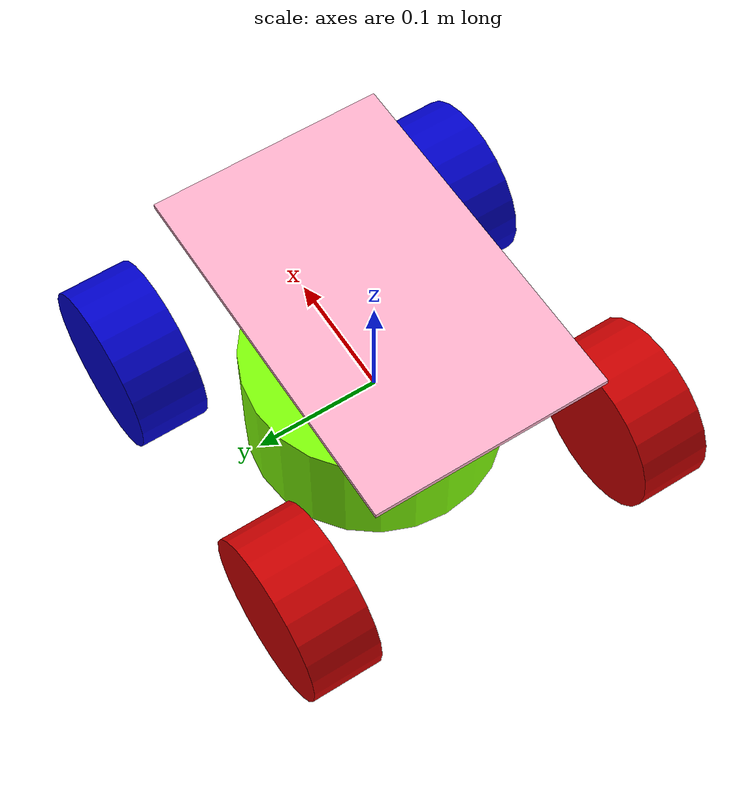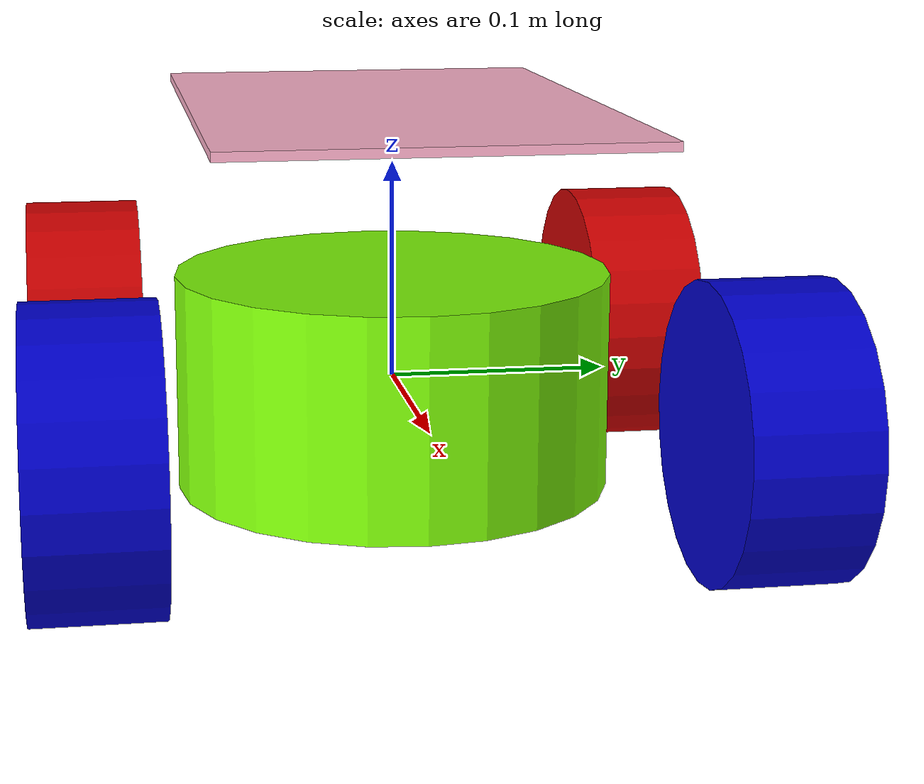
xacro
<?xml version="1.0"?>
<robot xmlns:xacro="http://www.ros.org/wiki/xacro">

    <xacro:property name="chassis_lengthhh" value="0.3"/>

    <material name="blue">
        <color rgba="0 0 0.8 1"/>
    </material>

    <material name="red">
        <color rgba="0.8 0 0 1"/>
    </material>

    <material name="green">
        <color rgba="0.5 0.99 0.03 1"/>
    </material>

    <material name="pink">
        <color rgba="1.0 0.7 0.8 1"/>
    </material>

    <!-- BASE_LINK -->

    <link name="base_link">
        <visual>
            <geometry>
                <cylinder length="0.1" radius="0.1"/>
            </geometry>
            <material name="green"/>
        </visual>
    </link>

    <!-- BASE_FOOTPRINT -->

    <link name="base_footprint">

    </link>

    <joint name="base_joint" type="fixed">
        <parent link="base_link"/>
        <child link="base_footprint"/>
        <origin xyz="0.0 0.0 0.0" rpy="0 0 0"/>
    </joint>

    <!-- CHASSIS -->

    <link name="chassis">
        <visual>
            <geometry>
                <box size="0.290 0.185 0.004"/>
            </geometry>
            <material name="pink"/>
            <origin rpy="0 0 0" xyz="0 0 0"/>
        </visual>
    </link>

    <joint name="base_to_chassis" type="fixed">
        <parent link="base_link"/>
        <child link="chassis"/>
        <origin rpy="0 0 0" xyz="0 0 0.125"/>
        <axis xyz="0 0 1"/>
    </joint>

    <!-- FRONT RIGHT WHEEL LINK -->

    <link name="wheel_front_right">
        <visual>
            <geometry>
                <cylinder length="0.055" radius="0.065"/>
            </geometry>
            <material name="blue"/>
        </visual>
    </link>

    <joint name="motor_0" type="continuous">
        <parent link="base_link"/>
        <child link="wheel_front_right"/>
        <origin xyz="0.120 -0.140 0.0" rpy="1.57 0 0"/>
        <axis xyz="0 0 1"/>
    </joint>

    <!-- FRONT LEFT WHEEL LINK -->

    <link name="wheel_front_left">
        <visual>
            <geometry>
                <cylinder length="0.055" radius="0.065"/>
            </geometry>
            <material name="blue"/>
        </visual>
    </link>

    <joint name="motor_1" type="continuous">
        <parent link="base_link"/>
        <child link="wheel_front_left"/>
        <origin xyz="0.120 0.140 0.0" rpy="1.57 0 0"/>
        <axis xyz="0 0 -1"/>
    </joint>

    <!-- BACK RIGHT WHEEL LINK -->

    <link name="wheel_back_right">
        <visual>
            <geometry>
                <cylinder length="0.055" radius="0.065"/>
            </geometry>
            <material name="red"/>
        </visual>
    </link>

    <joint name="motor_2" type="continuous">
        <parent link="base_link"/>
        <child link="wheel_back_right"/>
        <origin xyz="-0.120 -0.140 0.0" rpy="1.57 0 0"/>
        <axis xyz="0 0 1"/>
    </joint>

    <!-- BACK LEFT WHEEL LINK -->

    <link name="wheel_back_left">
        <visual>
            <geometry>
                <cylinder length="0.055" radius="0.065"/>
            </geometry>
            <material name="red"/>
        </visual>
    </link>

    <joint name="motor_3" type="continuous">
        <parent link="base_link"/>
        <child link="wheel_back_left"/>
        <origin xyz="-0.120 0.140 0.0" rpy="1.57 0 0"/>
        <axis xyz="0 0 -1"/>
    </joint>

</robot>
